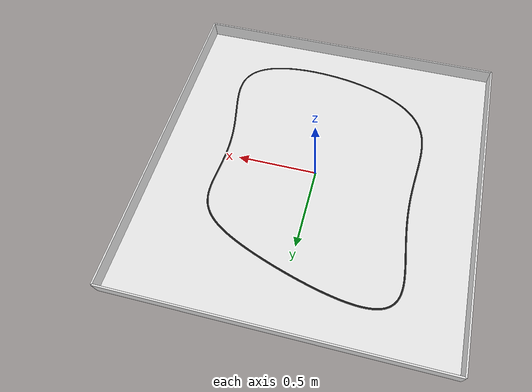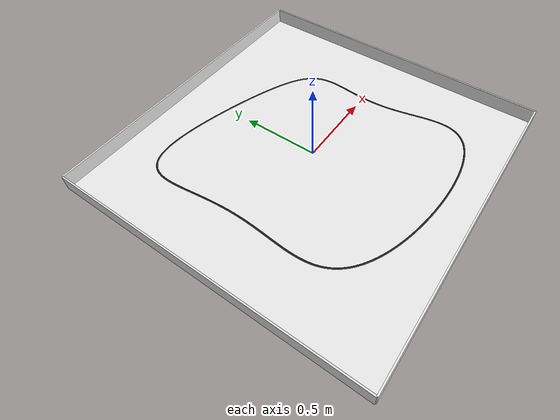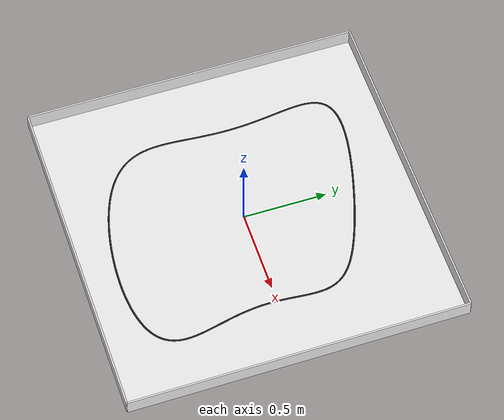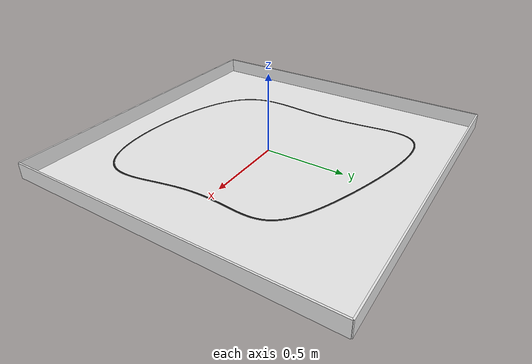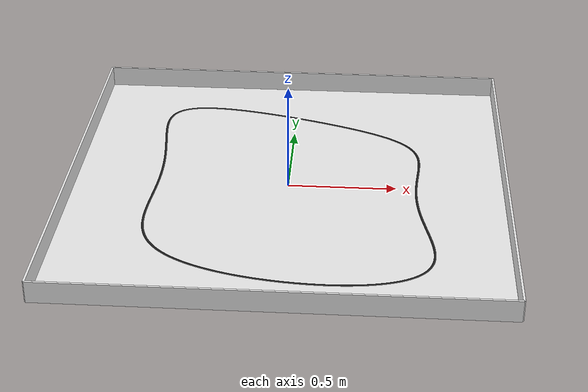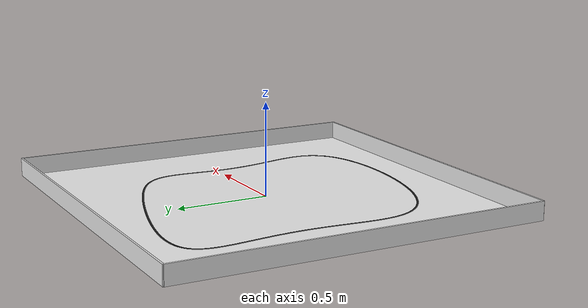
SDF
<?xml version="1.0" ?>
<sdf version="1.4">
  <world name="default">

    <!-- Global light source -->
    <include>
      <uri>model://sun</uri>
    </include>

    <model name="white_plane">
      <static>true</static>
      <link name="link">
        <collision name="collision">
          <geometry>
            <plane>
              <normal>0 0 1</normal>
              <size>100 100</size>
            </plane>
          </geometry>
          <surface>
            <friction>
              <ode>
                <mu>100</mu>
                <mu2>50</mu2>
              </ode>
            </friction>
          </surface>
        </collision>
        <visual name="visual">
          <cast_shadows>false</cast_shadows>
          <geometry>
            <plane>
              <normal>0 0 1</normal>
              <size>2 2</size>
            </plane>
          </geometry>
          <material>
            <script>
              <uri>file://media/materials/scripts/gazebo.material</uri>
              <name>Gazebo/White</name>
            </script>
          </material>
        </visual>
      </link>
    </model>

    <model name="wall1">
      <static>true</static>
      <pose>0 -1 0.05 0 0 0</pose>
      <link name="link">
        <collision name="collision">
          <geometry>
            <box>
              <size>2 0.01 0.1</size>
            </box>
          </geometry>
        </collision>
        <visual name="visual">
          <geometry>
            <box>
              <size>2 0.01 0.1</size>
            </box>
          </geometry>
          <material>
            <script>
              <uri>file://media/materials/scripts/gazebo.material</uri>
              <name>Gazebo/White</name>
            </script>
          </material>
        </visual>
      </link>
    </model>

    <model name="wall2">
      <static>true</static>
      <pose>0 1 0.05 0 0 0</pose>
      <link name="link">
        <collision name="collision">
          <geometry>
            <box>
              <size>2 0.01 0.1</size>
            </box>
          </geometry>
        </collision>
        <visual name="visual">
          <geometry>
            <box>
              <size>2 0.01 0.1</size>
            </box>
          </geometry>
          <material>
            <script>
              <uri>file://media/materials/scripts/gazebo.material</uri>
              <name>Gazebo/White</name>
            </script>
          </material>
        </visual>
      </link>
    </model>

    <model name="wall3">
      <static>true</static>
      <pose>-1 0 0.05 0 0 0</pose>
      <link name="link">
        <collision name="collision">
          <geometry>
            <box>
              <size>0.01 2 0.1</size>
            </box>
          </geometry>
        </collision>
        <visual name="visual">
          <geometry>
            <box>
              <size>0.01 2 0.1</size>
            </box>
          </geometry>
          <material>
            <script>
              <uri>file://media/materials/scripts/gazebo.material</uri>
              <name>Gazebo/White</name>
            </script>
          </material>
        </visual>
      </link>
    </model>

    <model name="wall4">
      <static>true</static>
      <pose>1 0 0.05 0 0 0</pose>
      <link name="link">
        <collision name="collision">
          <geometry>
            <box>
              <size>0.01 2 0.1</size>
            </box>
          </geometry>
        </collision>
        <visual name="visual">
          <geometry>
            <box>
              <size>0.01 2 0.1</size>
            </box>
          </geometry>
          <material>
            <script>
              <uri>file://media/materials/scripts/gazebo.material</uri>
              <name>Gazebo/White</name>
            </script>
          </material>
        </visual>
      </link>
    </model>

    <model name="line1">
      <static>true</static>
      <pose>0 0 0 1.57079632679 0 0</pose>
      <link name="link">
        <visual name="visual">
          <geometry>
            <mesh>
              <uri>model://prisme_gazebo/meshes/line_following_1.dae</uri>
              <scale>0.001 0.001 0.001</scale>
            </mesh>
          </geometry>
          <material>
            <script>
              <uri>file://media/materials/scripts/gazebo.material</uri>
              <name>Gazebo/Black</name>
            </script>
          </material>
        </visual>
      </link>
    </model>

  </world>
</sdf>
